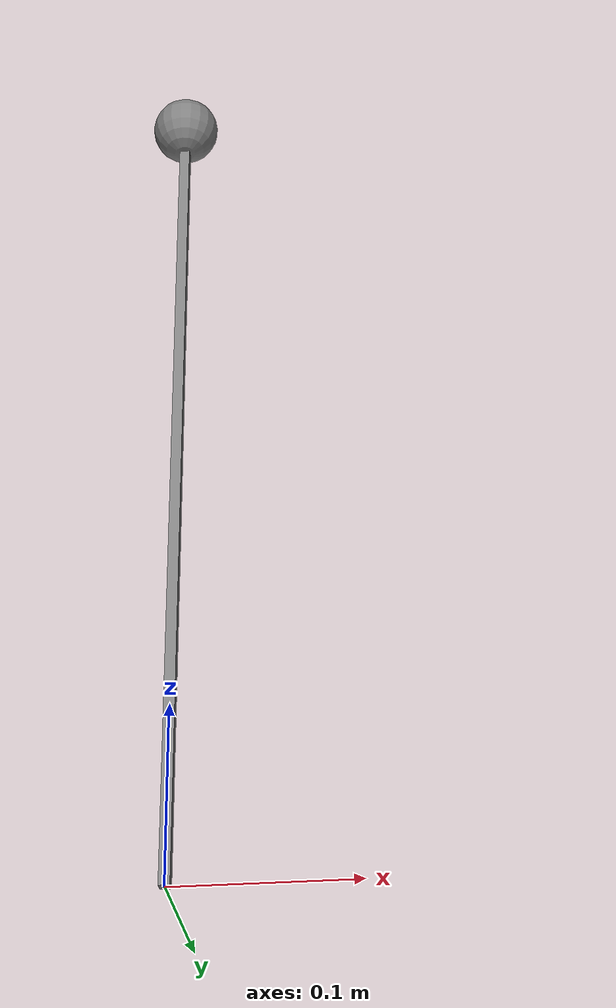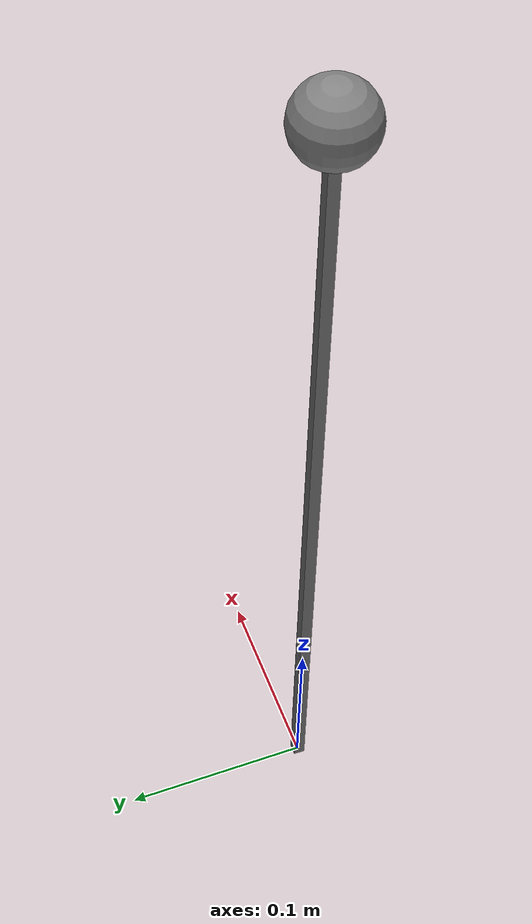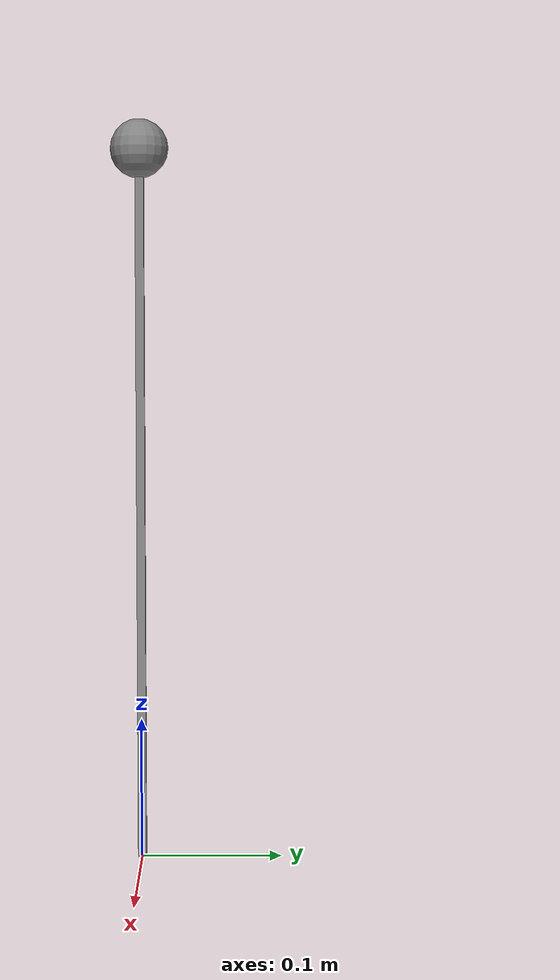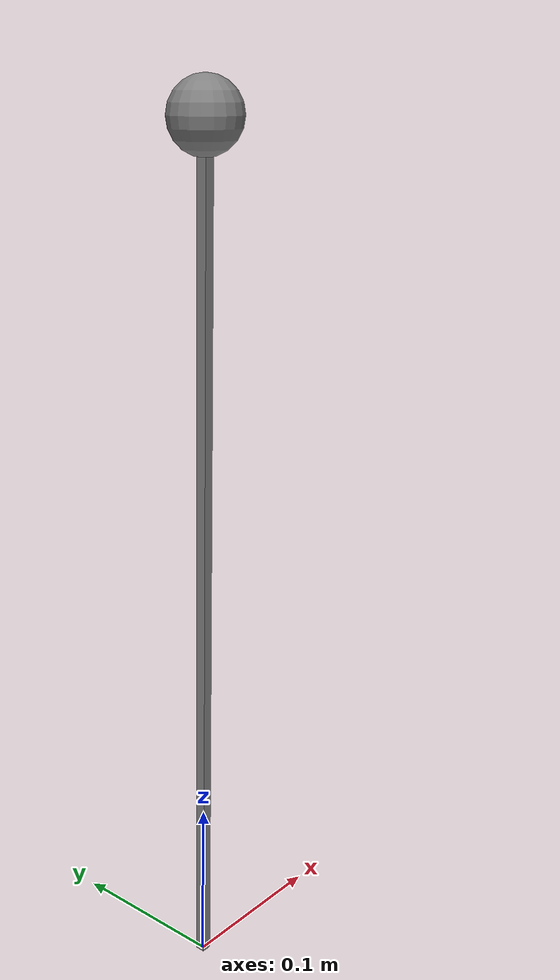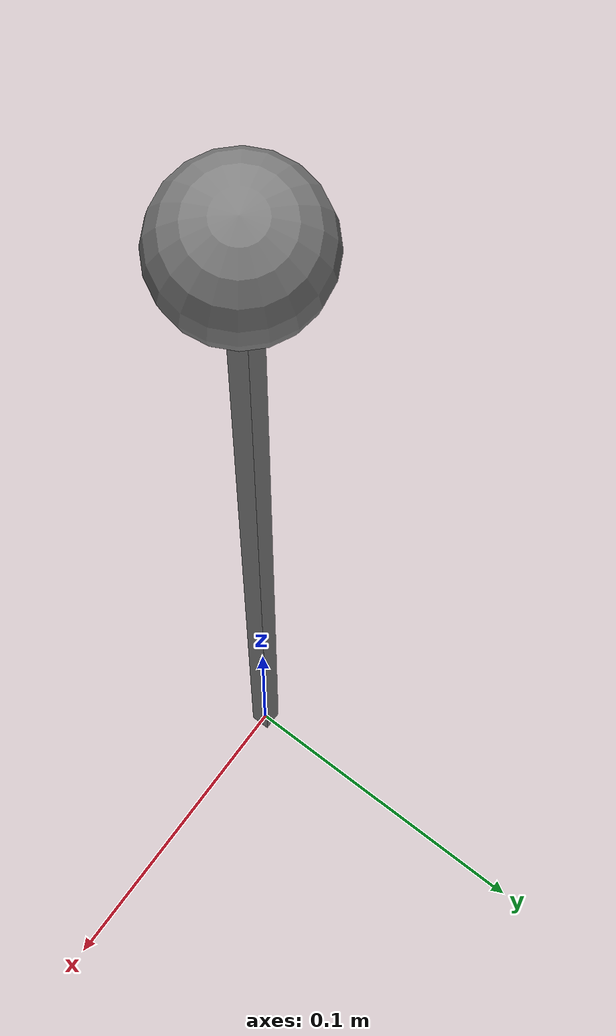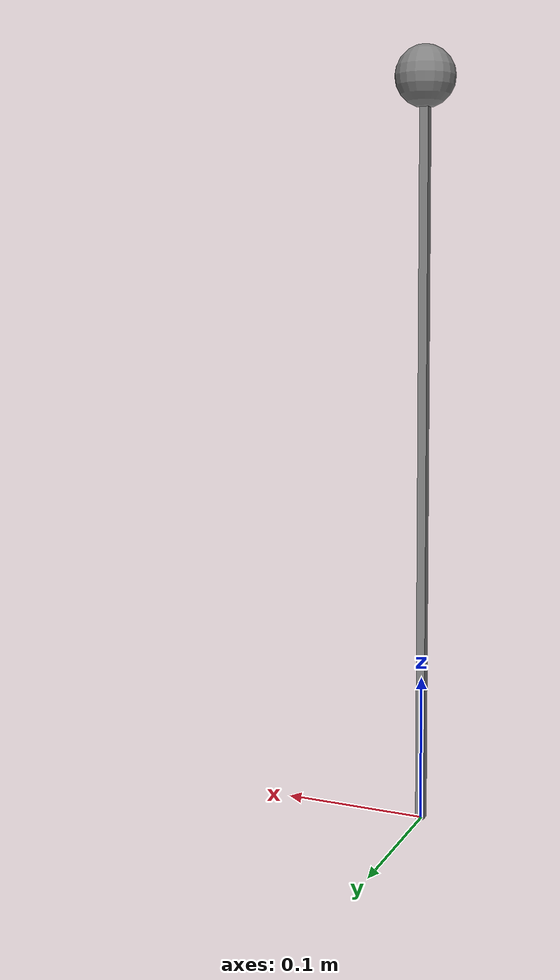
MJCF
<mujoco>
    <compiler angle = "degree"/>
    <option>
        <flag gravity = "enable" contact = "disable"/>

    </option>
    <asset>
        <texture name="grid" type="2d" builtin="checker" rgb1=".1 .2 .3"
            rgb2=".2 .3 .4" width="300" height="300" mark="none"/>
        <material name="grid" texture="grid" texrepeat="1 1"
            texuniform="true" reflectance=".2"/>
    </asset>

    <worldbody>

        <body name = "pendulum" gravcomp = "0">-->
            <joint name = "pend_joint" type = "hinge" axis = "0 1 0" pos = "0 0 0"/>
            <geom name = "pend_stick" type = "box" fromto = "0 0 0 0 0 .5" size = ".003 .003" mass = "10"/>
            <body name = "end_mass" pos = "0 0 .5" gravcomp = "0">
                <geom name = "propeller_body" type = "sphere" size = ".02" mass = "10"/>
                <site name = "IMU_loc"/>
            </body>
        </body>

    </worldbody>

    <sensor>
        <accelerometer name = "IMU_acc" site = "IMU_loc" noise = "2"/>
        <gyro name = "IMU_gyro" site = "IMU_loc" noise = ".05"/>
    </sensor>

</mujoco>
